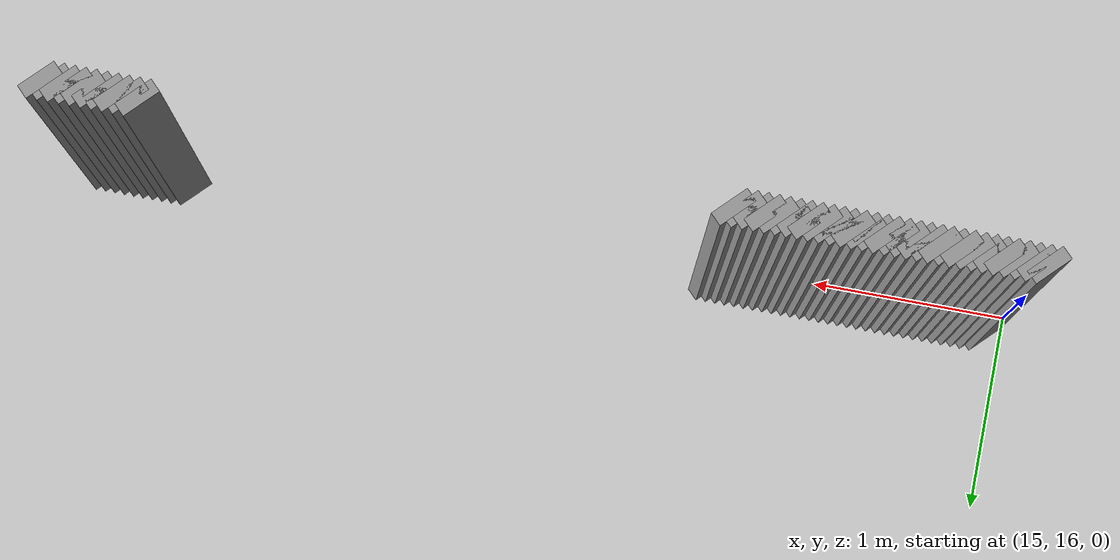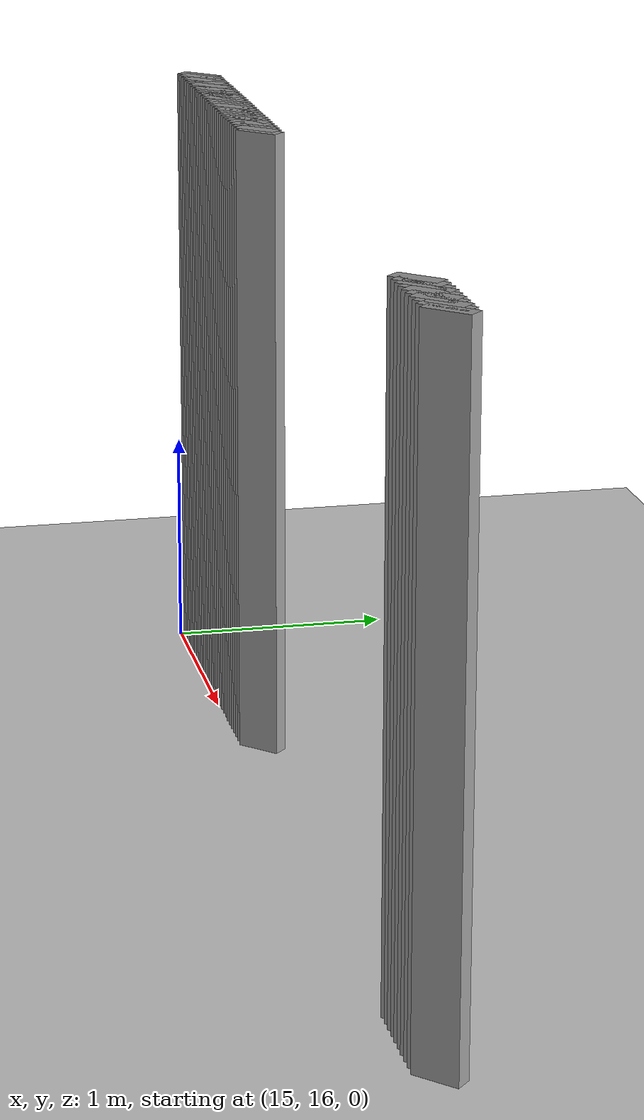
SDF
<sdf version="1.5">
 <world name="default">
  <include><uri>model://ground_plane</uri></include>
  <include><uri>model://sun</uri></include>
  <model name="grey_wall_1143">
   <static>1</static>
   <link name="link">
    <pose>15.1 16.1  1.4 0 0 -0.785398163397</pose>
    <collision name="collision"><geometry><box><size>0.0707106781187 .2  2.8</size></box></geometry></collision>
    <visual name="visual">
     <cast_shadows>0</cast_shadows>
     <geometry><box><size>0.0707106781187 .2  2.8</size></box></geometry>
     <material>
      <script>
       <uri>model://grey_wall/materials/scripts</uri>
       <uri>model://grey_wall/materials/textures</uri>
       <name>vrc/grey_wall</name>
      </script>
     </material>
    </visual>
   </link>
  </model>
  <model name="grey_wall_1144">
   <static>1</static>
   <link name="link">
    <pose>15.15 16.1  1.4 0 0 -0.785398163397</pose>
    <collision name="collision"><geometry><box><size>0.0707106781187 .2  2.8</size></box></geometry></collision>
    <visual name="visual">
     <cast_shadows>0</cast_shadows>
     <geometry><box><size>0.0707106781187 .2  2.8</size></box></geometry>
     <material>
      <script>
       <uri>model://grey_wall/materials/scripts</uri>
       <uri>model://grey_wall/materials/textures</uri>
       <name>vrc/grey_wall</name>
      </script>
     </material>
    </visual>
   </link>
  </model>
  <model name="grey_wall_1145">
   <static>1</static>
   <link name="link">
    <pose>15.2 16.1  1.4 0 0 -0.785398163397</pose>
    <collision name="collision"><geometry><box><size>0.0707106781187 .2  2.8</size></box></geometry></collision>
    <visual name="visual">
     <cast_shadows>0</cast_shadows>
     <geometry><box><size>0.0707106781187 .2  2.8</size></box></geometry>
     <material>
      <script>
       <uri>model://grey_wall/materials/scripts</uri>
       <uri>model://grey_wall/materials/textures</uri>
       <name>vrc/grey_wall</name>
      </script>
     </material>
    </visual>
   </link>
  </model>
  <model name="grey_wall_1146">
   <static>1</static>
   <link name="link">
    <pose>15.25 16.1  1.4 0 0 -0.785398163397</pose>
    <collision name="collision"><geometry><box><size>0.0707106781187 .2  2.8</size></box></geometry></collision>
    <visual name="visual">
     <cast_shadows>0</cast_shadows>
     <geometry><box><size>0.0707106781187 .2  2.8</size></box></geometry>
     <material>
      <script>
       <uri>model://grey_wall/materials/scripts</uri>
       <uri>model://grey_wall/materials/textures</uri>
       <name>vrc/grey_wall</name>
      </script>
     </material>
    </visual>
   </link>
  </model>
  <model name="grey_wall_1147">
   <static>1</static>
   <link name="link">
    <pose>15.3 16.1  1.4 0 0 -0.785398163397</pose>
    <collision name="collision"><geometry><box><size>0.0707106781187 .2  2.8</size></box></geometry></collision>
    <visual name="visual">
     <cast_shadows>0</cast_shadows>
     <geometry><box><size>0.0707106781187 .2  2.8</size></box></geometry>
     <material>
      <script>
       <uri>model://grey_wall/materials/scripts</uri>
       <uri>model://grey_wall/materials/textures</uri>
       <name>vrc/grey_wall</name>
      </script>
     </material>
    </visual>
   </link>
  </model>
  <model name="grey_wall_1148">
   <static>1</static>
   <link name="link">
    <pose>15.35 16.1  1.4 0 0 -0.785398163397</pose>
    <collision name="collision"><geometry><box><size>0.0707106781187 .2  2.8</size></box></geometry></collision>
    <visual name="visual">
     <cast_shadows>0</cast_shadows>
     <geometry><box><size>0.0707106781187 .2  2.8</size></box></geometry>
     <material>
      <script>
       <uri>model://grey_wall/materials/scripts</uri>
       <uri>model://grey_wall/materials/textures</uri>
       <name>vrc/grey_wall</name>
      </script>
     </material>
    </visual>
   </link>
  </model>
  <model name="grey_wall_1149">
   <static>1</static>
   <link name="link">
    <pose>15.4 16.1  1.4 0 0 -0.785398163397</pose>
    <collision name="collision"><geometry><box><size>0.0707106781187 .2  2.8</size></box></geometry></collision>
    <visual name="visual">
     <cast_shadows>0</cast_shadows>
     <geometry><box><size>0.0707106781187 .2  2.8</size></box></geometry>
     <material>
      <script>
       <uri>model://grey_wall/materials/scripts</uri>
       <uri>model://grey_wall/materials/textures</uri>
       <name>vrc/grey_wall</name>
      </script>
     </material>
    </visual>
   </link>
  </model>
  <model name="grey_wall_1150">
   <static>1</static>
   <link name="link">
    <pose>15.45 16.1  1.4 0 0 -0.785398163397</pose>
    <collision name="collision"><geometry><box><size>0.0707106781187 .2  2.8</size></box></geometry></collision>
    <visual name="visual">
     <cast_shadows>0</cast_shadows>
     <geometry><box><size>0.0707106781187 .2  2.8</size></box></geometry>
     <material>
      <script>
       <uri>model://grey_wall/materials/scripts</uri>
       <uri>model://grey_wall/materials/textures</uri>
       <name>vrc/grey_wall</name>
      </script>
     </material>
    </visual>
   </link>
  </model>
  <model name="grey_wall_1151">
   <static>1</static>
   <link name="link">
    <pose>15.5 16.1  1.4 0 0 -0.785398163397</pose>
    <collision name="collision"><geometry><box><size>0.0707106781187 .2  2.8</size></box></geometry></collision>
    <visual name="visual">
     <cast_shadows>0</cast_shadows>
     <geometry><box><size>0.0707106781187 .2  2.8</size></box></geometry>
     <material>
      <script>
       <uri>model://grey_wall/materials/scripts</uri>
       <uri>model://grey_wall/materials/textures</uri>
       <name>vrc/grey_wall</name>
      </script>
     </material>
    </visual>
   </link>
  </model>
  <model name="grey_wall_1152">
   <static>1</static>
   <link name="link">
    <pose>15.55 16.1  1.4 0 0 -0.785398163397</pose>
    <collision name="collision"><geometry><box><size>0.0707106781187 .2  2.8</size></box></geometry></collision>
    <visual name="visual">
     <cast_shadows>0</cast_shadows>
     <geometry><box><size>0.0707106781187 .2  2.8</size></box></geometry>
     <material>
      <script>
       <uri>model://grey_wall/materials/scripts</uri>
       <uri>model://grey_wall/materials/textures</uri>
       <name>vrc/grey_wall</name>
      </script>
     </material>
    </visual>
   </link>
  </model>
  <model name="grey_wall_1153">
   <static>1</static>
   <link name="link">
    <pose>15.6 16.1  1.4 0 0 -0.785398163397</pose>
    <collision name="collision"><geometry><box><size>0.0707106781187 .2  2.8</size></box></geometry></collision>
    <visual name="visual">
     <cast_shadows>0</cast_shadows>
     <geometry><box><size>0.0707106781187 .2  2.8</size></box></geometry>
     <material>
      <script>
       <uri>model://grey_wall/materials/scripts</uri>
       <uri>model://grey_wall/materials/textures</uri>
       <name>vrc/grey_wall</name>
      </script>
     </material>
    </visual>
   </link>
  </model>
  <model name="grey_wall_1154">
   <static>1</static>
   <link name="link">
    <pose>15.65 16.1  1.4 0 0 -0.785398163397</pose>
    <collision name="collision"><geometry><box><size>0.0707106781187 .2  2.8</size></box></geometry></collision>
    <visual name="visual">
     <cast_shadows>0</cast_shadows>
     <geometry><box><size>0.0707106781187 .2  2.8</size></box></geometry>
     <material>
      <script>
       <uri>model://grey_wall/materials/scripts</uri>
       <uri>model://grey_wall/materials/textures</uri>
       <name>vrc/grey_wall</name>
      </script>
     </material>
    </visual>
   </link>
  </model>
  <model name="grey_wall_1155">
   <static>1</static>
   <link name="link">
    <pose>15.7 16.1  1.4 0 0 -0.785398163397</pose>
    <collision name="collision"><geometry><box><size>0.0707106781187 .2  2.8</size></box></geometry></collision>
    <visual name="visual">
     <cast_shadows>0</cast_shadows>
     <geometry><box><size>0.0707106781187 .2  2.8</size></box></geometry>
     <material>
      <script>
       <uri>model://grey_wall/materials/scripts</uri>
       <uri>model://grey_wall/materials/textures</uri>
       <name>vrc/grey_wall</name>
      </script>
     </material>
    </visual>
   </link>
  </model>
  <model name="grey_wall_1156">
   <static>1</static>
   <link name="link">
    <pose>15.75 16.1  1.4 0 0 -0.785398163397</pose>
    <collision name="collision"><geometry><box><size>0.0707106781187 .2  2.8</size></box></geometry></collision>
    <visual name="visual">
     <cast_shadows>0</cast_shadows>
     <geometry><box><size>0.0707106781187 .2  2.8</size></box></geometry>
     <material>
      <script>
       <uri>model://grey_wall/materials/scripts</uri>
       <uri>model://grey_wall/materials/textures</uri>
       <name>vrc/grey_wall</name>
      </script>
     </material>
    </visual>
   </link>
  </model>
  <model name="grey_wall_1157">
   <static>1</static>
   <link name="link">
    <pose>15.8 16.1  1.4 0 0 -0.785398163397</pose>
    <collision name="collision"><geometry><box><size>0.0707106781187 .2  2.8</size></box></geometry></collision>
    <visual name="visual">
     <cast_shadows>0</cast_shadows>
     <geometry><box><size>0.0707106781187 .2  2.8</size></box></geometry>
     <material>
      <script>
       <uri>model://grey_wall/materials/scripts</uri>
       <uri>model://grey_wall/materials/textures</uri>
       <name>vrc/grey_wall</name>
      </script>
     </material>
    </visual>
   </link>
  </model>
  <model name="grey_wall_1158">
   <static>1</static>
   <link name="link">
    <pose>15.85 16.1  1.4 0 0 -0.785398163397</pose>
    <collision name="collision"><geometry><box><size>0.0707106781187 .2  2.8</size></box></geometry></collision>
    <visual name="visual">
     <cast_shadows>0</cast_shadows>
     <geometry><box><size>0.0707106781187 .2  2.8</size></box></geometry>
     <material>
      <script>
       <uri>model://grey_wall/materials/scripts</uri>
       <uri>model://grey_wall/materials/textures</uri>
       <name>vrc/grey_wall</name>
      </script>
     </material>
    </visual>
   </link>
  </model>
  <model name="grey_wall_1159">
   <static>1</static>
   <link name="link">
    <pose>15.9 16.1  1.4 0 0 -0.785398163397</pose>
    <collision name="collision"><geometry><box><size>0.0707106781187 .2  2.8</size></box></geometry></collision>
    <visual name="visual">
     <cast_shadows>0</cast_shadows>
     <geometry><box><size>0.0707106781187 .2  2.8</size></box></geometry>
     <material>
      <script>
       <uri>model://grey_wall/materials/scripts</uri>
       <uri>model://grey_wall/materials/textures</uri>
       <name>vrc/grey_wall</name>
      </script>
     </material>
    </visual>
   </link>
  </model>
  <model name="grey_wall_1160">
   <static>1</static>
   <link name="link">
    <pose>15.95 16.1  1.4 0 0 -0.785398163397</pose>
    <collision name="collision"><geometry><box><size>0.0707106781187 .2  2.8</size></box></geometry></collision>
    <visual name="visual">
     <cast_shadows>0</cast_shadows>
     <geometry><box><size>0.0707106781187 .2  2.8</size></box></geometry>
     <material>
      <script>
       <uri>model://grey_wall/materials/scripts</uri>
       <uri>model://grey_wall/materials/textures</uri>
       <name>vrc/grey_wall</name>
      </script>
     </material>
    </visual>
   </link>
  </model>
  <model name="grey_wall_1161">
   <static>1</static>
   <link name="link">
    <pose>16.0 16.1  1.4 0 0 -0.785398163397</pose>
    <collision name="collision"><geometry><box><size>0.0707106781187 .2  2.8</size></box></geometry></collision>
    <visual name="visual">
     <cast_shadows>0</cast_shadows>
     <geometry><box><size>0.0707106781187 .2  2.8</size></box></geometry>
     <material>
      <script>
       <uri>model://grey_wall/materials/scripts</uri>
       <uri>model://grey_wall/materials/textures</uri>
       <name>vrc/grey_wall</name>
      </script>
     </material>
    </visual>
   </link>
  </model>
  <model name="grey_wall_1162">
   <static>1</static>
   <link name="link">
    <pose>16.05 16.1  1.4 0 0 -0.785398163397</pose>
    <collision name="collision"><geometry><box><size>0.0707106781187 .2  2.8</size></box></geometry></collision>
    <visual name="visual">
     <cast_shadows>0</cast_shadows>
     <geometry><box><size>0.0707106781187 .2  2.8</size></box></geometry>
     <material>
      <script>
       <uri>model://grey_wall/materials/scripts</uri>
       <uri>model://grey_wall/materials/textures</uri>
       <name>vrc/grey_wall</name>
      </script>
     </material>
    </visual>
   </link>
  </model>
  <model name="grey_wall_1163">
   <static>1</static>
   <link name="link">
    <pose>16.1 16.1  1.4 0 0 -0.785398163397</pose>
    <collision name="collision"><geometry><box><size>0.0707106781187 .2  2.8</size></box></geometry></collision>
    <visual name="visual">
     <cast_shadows>0</cast_shadows>
     <geometry><box><size>0.0707106781187 .2  2.8</size></box></geometry>
     <material>
      <script>
       <uri>model://grey_wall/materials/scripts</uri>
       <uri>model://grey_wall/materials/textures</uri>
       <name>vrc/grey_wall</name>
      </script>
     </material>
    </visual>
   </link>
  </model>
  <model name="grey_wall_1164">
   <static>1</static>
   <link name="link">
    <pose>16.15 16.1  1.4 0 0 -0.785398163397</pose>
    <collision name="collision"><geometry><box><size>0.0707106781187 .2  2.8</size></box></geometry></collision>
    <visual name="visual">
     <cast_shadows>0</cast_shadows>
     <geometry><box><size>0.0707106781187 .2  2.8</size></box></geometry>
     <material>
      <script>
       <uri>model://grey_wall/materials/scripts</uri>
       <uri>model://grey_wall/materials/textures</uri>
       <name>vrc/grey_wall</name>
      </script>
     </material>
    </visual>
   </link>
  </model>
  <model name="grey_wall_1165">
   <static>1</static>
   <link name="link">
    <pose>16.2 16.1  1.4 0 0 -0.785398163397</pose>
    <collision name="collision"><geometry><box><size>0.0707106781187 .2  2.8</size></box></geometry></collision>
    <visual name="visual">
     <cast_shadows>0</cast_shadows>
     <geometry><box><size>0.0707106781187 .2  2.8</size></box></geometry>
     <material>
      <script>
       <uri>model://grey_wall/materials/scripts</uri>
       <uri>model://grey_wall/materials/textures</uri>
       <name>vrc/grey_wall</name>
      </script>
     </material>
    </visual>
   </link>
  </model>
  <model name="grey_wall_1166">
   <static>1</static>
   <link name="link">
    <pose>16.25 16.1  1.4 0 0 -0.785398163397</pose>
    <collision name="collision"><geometry><box><size>0.0707106781187 .2  2.8</size></box></geometry></collision>
    <visual name="visual">
     <cast_shadows>0</cast_shadows>
     <geometry><box><size>0.0707106781187 .2  2.8</size></box></geometry>
     <material>
      <script>
       <uri>model://grey_wall/materials/scripts</uri>
       <uri>model://grey_wall/materials/textures</uri>
       <name>vrc/grey_wall</name>
      </script>
     </material>
    </visual>
   </link>
  </model>
  <model name="grey_wall_1167">
   <static>1</static>
   <link name="link">
    <pose>16.3 16.1  1.4 0 0 -0.785398163397</pose>
    <collision name="collision"><geometry><box><size>0.0707106781187 .2  2.8</size></box></geometry></collision>
    <visual name="visual">
     <cast_shadows>0</cast_shadows>
     <geometry><box><size>0.0707106781187 .2  2.8</size></box></geometry>
     <material>
      <script>
       <uri>model://grey_wall/materials/scripts</uri>
       <uri>model://grey_wall/materials/textures</uri>
       <name>vrc/grey_wall</name>
      </script>
     </material>
    </visual>
   </link>
  </model>
  <model name="grey_wall_1168">
   <static>1</static>
   <link name="link">
    <pose>16.35 16.1  1.4 0 0 -0.785398163397</pose>
    <collision name="collision"><geometry><box><size>0.0707106781187 .2  2.8</size></box></geometry></collision>
    <visual name="visual">
     <cast_shadows>0</cast_shadows>
     <geometry><box><size>0.0707106781187 .2  2.8</size></box></geometry>
     <material>
      <script>
       <uri>model://grey_wall/materials/scripts</uri>
       <uri>model://grey_wall/materials/textures</uri>
       <name>vrc/grey_wall</name>
      </script>
     </material>
    </visual>
   </link>
  </model>
  <model name="grey_wall_1169">
   <static>1</static>
   <link name="link">
    <pose>16.4 16.1  1.4 0 0 -0.785398163397</pose>
    <collision name="collision"><geometry><box><size>0.0707106781187 .2  2.8</size></box></geometry></collision>
    <visual name="visual">
     <cast_shadows>0</cast_shadows>
     <geometry><box><size>0.0707106781187 .2  2.8</size></box></geometry>
     <material>
      <script>
       <uri>model://grey_wall/materials/scripts</uri>
       <uri>model://grey_wall/materials/textures</uri>
       <name>vrc/grey_wall</name>
      </script>
     </material>
    </visual>
   </link>
  </model>
  <model name="grey_wall_1170">
   <static>1</static>
   <link name="link">
    <pose>16.45 16.1  1.4 0 0 -0.785398163397</pose>
    <collision name="collision"><geometry><box><size>0.0707106781187 .2  2.8</size></box></geometry></collision>
    <visual name="visual">
     <cast_shadows>0</cast_shadows>
     <geometry><box><size>0.0707106781187 .2  2.8</size></box></geometry>
     <material>
      <script>
       <uri>model://grey_wall/materials/scripts</uri>
       <uri>model://grey_wall/materials/textures</uri>
       <name>vrc/grey_wall</name>
      </script>
     </material>
    </visual>
   </link>
  </model>
  <model name="grey_wall_1171">
   <static>1</static>
   <link name="link">
    <pose>16.5 16.1  1.4 0 0 -0.785398163397</pose>
    <collision name="collision"><geometry><box><size>0.0707106781187 .2  2.8</size></box></geometry></collision>
    <visual name="visual">
     <cast_shadows>0</cast_shadows>
     <geometry><box><size>0.0707106781187 .2  2.8</size></box></geometry>
     <material>
      <script>
       <uri>model://grey_wall/materials/scripts</uri>
       <uri>model://grey_wall/materials/textures</uri>
       <name>vrc/grey_wall</name>
      </script>
     </material>
    </visual>
   </link>
  </model>
  <model name="grey_wall_1172">
   <static>1</static>
   <link name="link">
    <pose>16.55 16.1  1.4 0 0 -0.785398163397</pose>
    <collision name="collision"><geometry><box><size>0.0707106781187 .2  2.8</size></box></geometry></collision>
    <visual name="visual">
     <cast_shadows>0</cast_shadows>
     <geometry><box><size>0.0707106781187 .2  2.8</size></box></geometry>
     <material>
      <script>
       <uri>model://grey_wall/materials/scripts</uri>
       <uri>model://grey_wall/materials/textures</uri>
       <name>vrc/grey_wall</name>
      </script>
     </material>
    </visual>
   </link>
  </model>
  <model name="grey_wall_1173">
   <static>1</static>
   <link name="link">
    <pose>19.3 16.1  1.4 0 0 -0.785398163397</pose>
    <collision name="collision"><geometry><box><size>0.0707106781187 .2  2.8</size></box></geometry></collision>
    <visual name="visual">
     <cast_shadows>0</cast_shadows>
     <geometry><box><size>0.0707106781187 .2  2.8</size></box></geometry>
     <material>
      <script>
       <uri>model://grey_wall/materials/scripts</uri>
       <uri>model://grey_wall/materials/textures</uri>
       <name>vrc/grey_wall</name>
      </script>
     </material>
    </visual>
   </link>
  </model>
  <model name="grey_wall_1174">
   <static>1</static>
   <link name="link">
    <pose>19.35 16.1  1.4 0 0 -0.785398163397</pose>
    <collision name="collision"><geometry><box><size>0.0707106781187 .2  2.8</size></box></geometry></collision>
    <visual name="visual">
     <cast_shadows>0</cast_shadows>
     <geometry><box><size>0.0707106781187 .2  2.8</size></box></geometry>
     <material>
      <script>
       <uri>model://grey_wall/materials/scripts</uri>
       <uri>model://grey_wall/materials/textures</uri>
       <name>vrc/grey_wall</name>
      </script>
     </material>
    </visual>
   </link>
  </model>
  <model name="grey_wall_1175">
   <static>1</static>
   <link name="link">
    <pose>19.4 16.1  1.4 0 0 -0.785398163397</pose>
    <collision name="collision"><geometry><box><size>0.0707106781187 .2  2.8</size></box></geometry></collision>
    <visual name="visual">
     <cast_shadows>0</cast_shadows>
     <geometry><box><size>0.0707106781187 .2  2.8</size></box></geometry>
     <material>
      <script>
       <uri>model://grey_wall/materials/scripts</uri>
       <uri>model://grey_wall/materials/textures</uri>
       <name>vrc/grey_wall</name>
      </script>
     </material>
    </visual>
   </link>
  </model>
  <model name="grey_wall_1176">
   <static>1</static>
   <link name="link">
    <pose>19.45 16.1  1.4 0 0 -0.785398163397</pose>
    <collision name="collision"><geometry><box><size>0.0707106781187 .2  2.8</size></box></geometry></collision>
    <visual name="visual">
     <cast_shadows>0</cast_shadows>
     <geometry><box><size>0.0707106781187 .2  2.8</size></box></geometry>
     <material>
      <script>
       <uri>model://grey_wall/materials/scripts</uri>
       <uri>model://grey_wall/materials/textures</uri>
       <name>vrc/grey_wall</name>
      </script>
     </material>
    </visual>
   </link>
  </model>
  <model name="grey_wall_1177">
   <static>1</static>
   <link name="link">
    <pose>19.5 16.1  1.4 0 0 -0.785398163397</pose>
    <collision name="collision"><geometry><box><size>0.0707106781187 .2  2.8</size></box></geometry></collision>
    <visual name="visual">
     <cast_shadows>0</cast_shadows>
     <geometry><box><size>0.0707106781187 .2  2.8</size></box></geometry>
     <material>
      <script>
       <uri>model://grey_wall/materials/scripts</uri>
       <uri>model://grey_wall/materials/textures</uri>
       <name>vrc/grey_wall</name>
      </script>
     </material>
    </visual>
   </link>
  </model>
  <model name="grey_wall_1178">
   <static>1</static>
   <link name="link">
    <pose>19.55 16.1  1.4 0 0 -0.785398163397</pose>
    <collision name="collision"><geometry><box><size>0.0707106781187 .2  2.8</size></box></geometry></collision>
    <visual name="visual">
     <cast_shadows>0</cast_shadows>
     <geometry><box><size>0.0707106781187 .2  2.8</size></box></geometry>
     <material>
      <script>
       <uri>model://grey_wall/materials/scripts</uri>
       <uri>model://grey_wall/materials/textures</uri>
       <name>vrc/grey_wall</name>
      </script>
     </material>
    </visual>
   </link>
  </model>
  <model name="grey_wall_1179">
   <static>1</static>
   <link name="link">
    <pose>19.6 16.1  1.4 0 0 -0.785398163397</pose>
    <collision name="collision"><geometry><box><size>0.0707106781187 .2  2.8</size></box></geometry></collision>
    <visual name="visual">
     <cast_shadows>0</cast_shadows>
     <geometry><box><size>0.0707106781187 .2  2.8</size></box></geometry>
     <material>
      <script>
       <uri>model://grey_wall/materials/scripts</uri>
       <uri>model://grey_wall/materials/textures</uri>
       <name>vrc/grey_wall</name>
      </script>
     </material>
    </visual>
   </link>
  </model>
  <model name="grey_wall_1180">
   <static>1</static>
   <link name="link">
    <pose>19.65 16.1  1.4 0 0 -0.785398163397</pose>
    <collision name="collision"><geometry><box><size>0.0707106781187 .2  2.8</size></box></geometry></collision>
    <visual name="visual">
     <cast_shadows>0</cast_shadows>
     <geometry><box><size>0.0707106781187 .2  2.8</size></box></geometry>
     <material>
      <script>
       <uri>model://grey_wall/materials/scripts</uri>
       <uri>model://grey_wall/materials/textures</uri>
       <name>vrc/grey_wall</name>
      </script>
     </material>
    </visual>
   </link>
  </model>
  <model name="grey_wall_1181">
   <static>1</static>
   <link name="link">
    <pose>19.7 16.1  1.4 0 0 -0.785398163397</pose>
    <collision name="collision"><geometry><box><size>0.0707106781187 .2  2.8</size></box></geometry></collision>
    <visual name="visual">
     <cast_shadows>0</cast_shadows>
     <geometry><box><size>0.0707106781187 .2  2.8</size></box></geometry>
     <material>
      <script>
       <uri>model://grey_wall/materials/scripts</uri>
       <uri>model://grey_wall/materials/textures</uri>
       <name>vrc/grey_wall</name>
      </script>
     </material>
    </visual>
   </link>
  </model>
  <model name="grey_wall_1182">
   <static>1</static>
   <link name="link">
    <pose>19.75 16.1  1.4 0 0 -0.785398163397</pose>
    <collision name="collision"><geometry><box><size>0.0707106781187 .2  2.8</size></box></geometry></collision>
    <visual name="visual">
     <cast_shadows>0</cast_shadows>
     <geometry><box><size>0.0707106781187 .2  2.8</size></box></geometry>
     <material>
      <script>
       <uri>model://grey_wall/materials/scripts</uri>
       <uri>model://grey_wall/materials/textures</uri>
       <name>vrc/grey_wall</name>
      </script>
     </material>
    </visual>
   </link>
  </model>
 </world>
</sdf>
